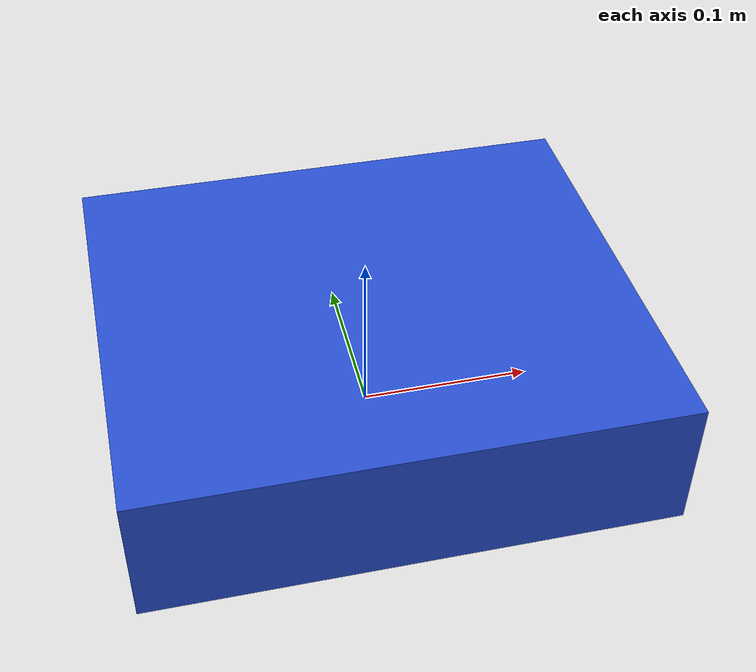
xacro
<?xml version="1.0"?>

<robot xmlns:xacro="http://www.ros.org/wiki/xacro">

  <xacro:property name="base_length" value="0.30"/>
  <xacro:property name="base_width" value="0.26"/>
  <xacro:property name="base_height" value="0.08"/>
  <xacro:property name="base_mass" value="4.0"/>

  <!--
    base_footprint 位于地面投影中心。
    它没有滚转、俯仰和高度，适合 Navigation2 使用。
  -->
  <link name="base_footprint"/>

  <!--
    base_link 位于机器人底盘几何中心。
  -->
  <link name="base_link">
    <visual>
      <origin xyz="0 0 0" rpy="0 0 0"/>

      <geometry>
        <box size="${base_length} ${base_width} ${base_height}"/>
      </geometry>

      <material name="orp_blue"/>
    </visual>

    <collision>
      <origin xyz="0 0 0" rpy="0 0 0"/>

      <geometry>
        <box size="${base_length} ${base_width} ${base_height}"/>
      </geometry>
    </collision>

    <inertial>
      <origin xyz="0 0 0" rpy="0 0 0"/>

      <mass value="${base_mass}"/>

      <inertia
        ixx="${base_mass * (base_width * base_width + base_height * base_height) / 12.0}"
        ixy="0.0"
        ixz="0.0"
        iyy="${base_mass * (base_length * base_length + base_height * base_height) / 12.0}"
        iyz="0.0"
        izz="${base_mass * (base_length * base_length + base_width * base_width) / 12.0}"/>
    </inertial>
  </link>

  <joint name="base_footprint_joint" type="fixed">
    <parent link="base_footprint"/>
    <child link="base_link"/>

    <!--
      底盘几何中心距离地面的高度。
    -->
    <origin
      xyz="0 0 ${base_height / 2.0}"
      rpy="0 0 0"/>
  </joint>

</robot>
